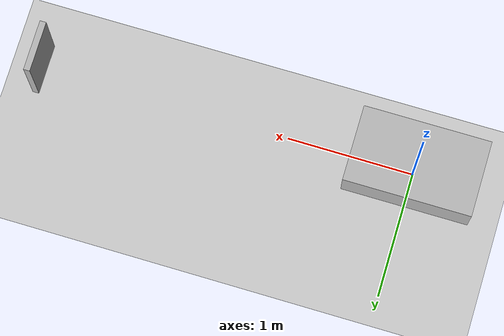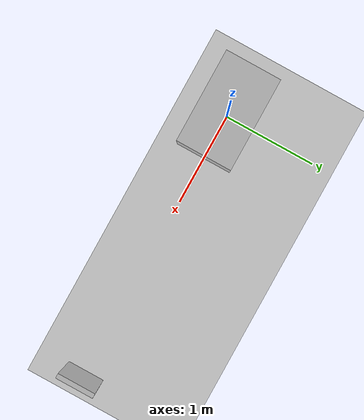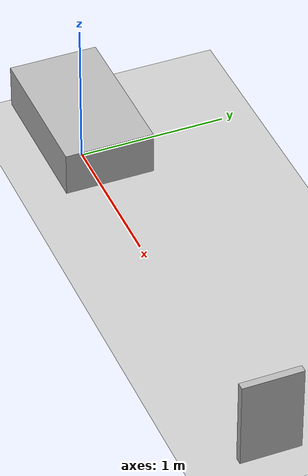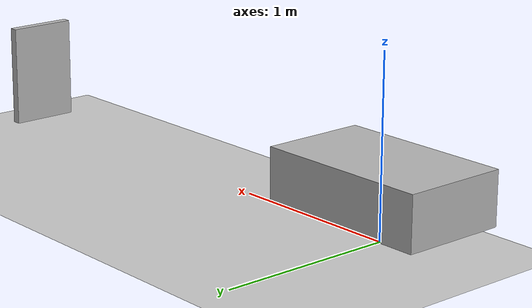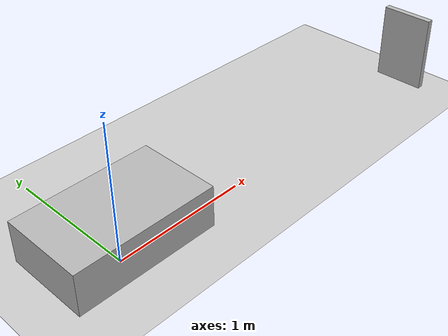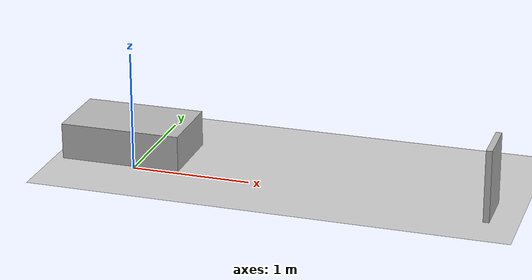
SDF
<?xml version="1.0" ?>
<sdf version="1.6">
  <world name="docking_world">

    <include>
      <uri>model://ground_plane</uri>
    </include>

    <include>
      <uri>model://sun</uri>
    </include>

    <include>
      <uri>model://spacecraft</uri>
      <pose>0 0 0.3 0 0 0</pose>
    </include>

    <include>
      <uri>model://docking_target</uri>
      <pose> 3.0 0 0.3 0 0 0 </pose>
    </include>

  </world>
</sdf>

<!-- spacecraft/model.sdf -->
<sdf version="1.6">

  <model name="spacecraft">

    <static>false</static>

    <link name="body">

      <inertia>
        <mass>10</mass>
        <ixx>0.375</ixx>
        <ixy>0.0</ixy>
        <ixz>0.0</ixz>
        <iyy>0.9083</iyy>
        <iyz>0.0</iyz>
        <izz>1.1333</izz>
      </inertia>

      <visual name="body_visual">
        <!-- geometry -->
        <geometry>
          <box>
            <size>1.0 0.6 0.3</size>
          </box>
        </geometry>
        <!-- material -->
        </visual>

      <collision name="body_collision">
        <!-- geometry -->
        <geometry>
          <box>
            <size>1.0 0.6 0.3</size>
          </box>
        </geometry>
      </collision>

      <sensor name="spacecraft_camera" type="camera">
        <pose>0.5 0 0 0 0 0</pose>
        <camera>
            <image>
            <width>640</width>
            <height>480</height>
          </image>
        </camera>
        <plugin name="spacecraft_camera" filename="libgazebo_ros_camera.so">
            <cameraName>spacecraft_camera</cameraName>
            <frameName>camera_link</frameName>
            <imageTopicName>camera/image_raw</imageTopicName>
            <!-- frq = 10hz = update rate -->
            <updateRate>10</updateRate>
        </plugin>
      </sensor>

    </link>

  </model>

</sdf>

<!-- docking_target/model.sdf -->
<sdf version="1.6">

  <model name="docking_target">

    <static>true</static>

    <link name="target_link">

      <visual name="target_visual">
        <!-- geometry -->
        <geometry>
          <box>
            <size>0.05 0.4 0.6</size>
          </box>
        </geometry>
        <!-- material -->
      </visual>

      <collision name="target_collision">
        <!-- geometry -->
        <geometry>
          <box>
            <size>0.05 0.4 0.6</size>
          </box>
        </geometry>
      </collision>

    </link>

  </model>

</sdf>
